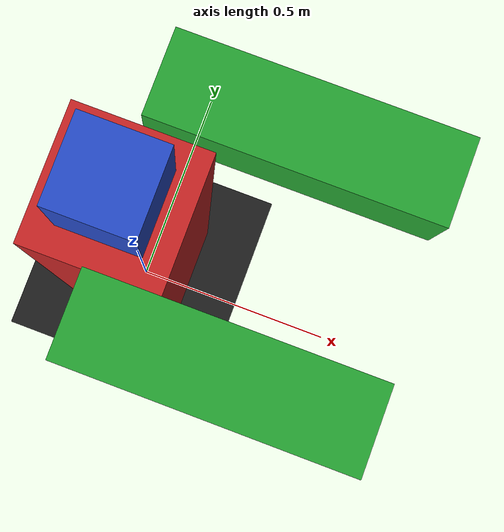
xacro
<?xml version='1.0'?>
<robot name="example_robot" xmlns:xacro="http://www.ros.org/wiki/xacro">
  <xacro:include filename="$(find in426_desc)/xacro/material.xacro"/>
  <!--Add the xacro:property tags here-->
  <xacro:property name="base_link_width" value="0.5"/>
  <xacro:property name="base_link_height" value="0.25"/>

  <xacro:property name="link1_width" value="0.25"/>
  <xacro:property name="link1_height" value="1"/>

  <xacro:property name="link2_width" value="0.15"/>
  <xacro:property name="link2_height" value="0.5"/>

  <xacro:property name="head_width" value="0.15"/>
  <xacro:property name="head_height" value="0.2"/>

  <link name="world"/>
  <joint name="world_to_base" type="fixed">
    <parent link="world"/>
    <child link="base_link"/>
  </joint>

  <link name="base_link">
    <visual>
      <origin xyz="0 0 ${base_link_height/2}"/>
      <geometry>
        <box size="${base_link_width} ${base_link_width} ${base_link_height}"/>
      </geometry>
      <material name="black"/>
    </visual>
  </link>

  <link name="link1">
    <visual>
      <origin xyz="0 0 ${link1_height/2}"/>
      <geometry>
        <box size="${link1_width} ${link1_width} ${link1_height}"/>
      </geometry>
      <material name="red"/>
    </visual>
  </link>
  <joint name="base_link_to_1" type="revolute">
    <parent link="base_link"/>
    <child link="link1"/>
    <origin xyz="0 0 ${base_link_height}"/>
    <axis xyz="0 0 1"/>
    <limit effort="10" lower="${-pi/2}" upper="${pi/2}" velocity="1"/>
  </joint>

  <link name="link2_left">
    <visual>
      <origin xyz="${link2_height/2} 0 ${link2_width/2}"/>
      <geometry>
        <box size="${link2_height} ${link2_width} ${link2_width}"/>
      </geometry>
      <material name="green"/>
    </visual>
  </link>
  <joint name="1_to_left" type="revolute">
    <parent link="link1"/>
    <child link="link2_left"/>
    <origin xyz="0 ${link1_width/2} ${link1_height}" rpy="${-pi/2} 0 0"/>
    <axis xyz="0 0 1"/>
    <limit effort="10" lower="${-pi/2}" upper="${pi/2}" velocity="1"/>
  </joint>

  <link name="link2_right">
    <visual>
      <origin xyz="${link2_height/2} 0 ${-link2_width/2}"/>
      <geometry>
        <box size="${link2_height} ${link2_width} ${link2_width}"/>
      </geometry>
      <material name="green"/>
    </visual>
  </link>
  <joint name="1_to_right" type="revolute">
    <parent link="link1"/>
    <child link="link2_right"/>
    <origin xyz="0 ${-link1_width/2} ${link1_height}" rpy="${-pi/2} 0 0"/>
    <axis xyz="0 0 1"/>
    <limit effort="10" lower="${-pi/2}" upper="${pi/2}" velocity="1"/>
  </joint>

  <link name="head">
    <visual>
      <origin xyz="0 0 ${head_height/2}"/>
      <geometry>
        <box size="${head_width} ${head_width} ${head_height}"/>
      </geometry>
      <material name="blue"/>
    </visual>
  </link>
  <joint name="1_to_head" type="revolute">
    <parent link="link1"/>
    <child link="head"/>
    <origin xyz="0 0 ${link1_height}"/>
    <axis xyz="0 0 1"/>
    <limit effort="10" lower="${-pi/2}" upper="${pi/2}" velocity="1"/>
  </joint>

</robot>
